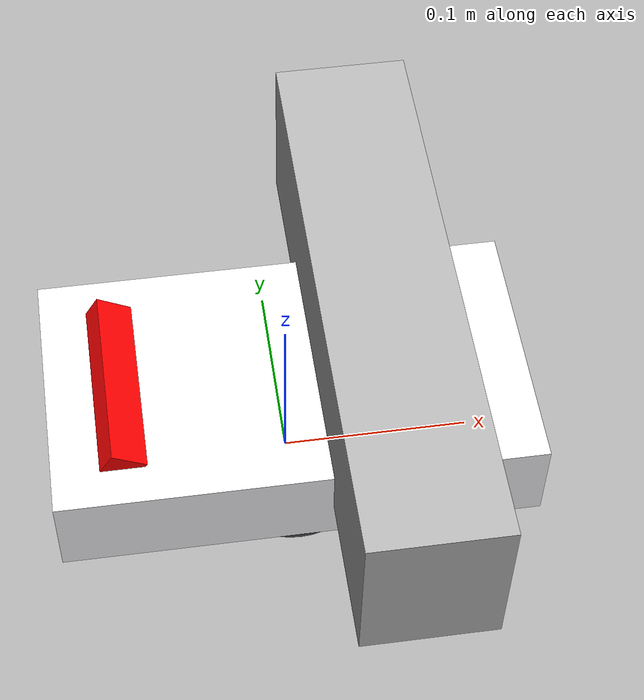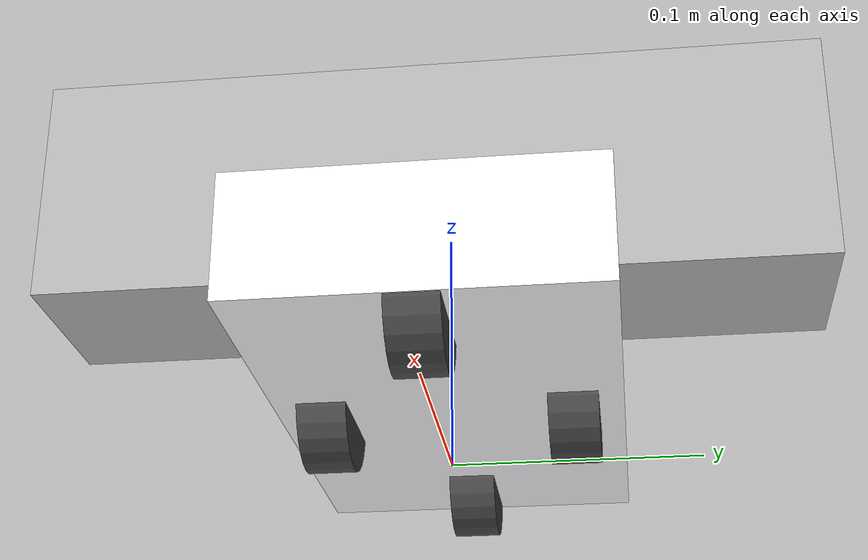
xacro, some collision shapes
<?xml version="1.0"?>
<robot name="hhbot" xmlns:xacro="http://www.ros.org/wiki/xacro">

    <xacro:include filename="$(find hhbot_gazebo)/urdf/hhbot_diff_body.urdf.xacro" />
    <xacro:include filename="$(find hhbot_gazebo)/urdf/kinect.xacro" />

    <xacro:property name="kinect_offset_x" value="0.05" />
    <xacro:property name="kinect_offset_y" value="0" />

    <!-- Body of hhobot -->
    <hhbot_body/>

    <!-- Kinect -->
    <joint name="kinect_frame_joint" type="fixed">
        <origin xyz="${kinect_offset_x} ${kinect_offset_y} ${base_link_height/2+0.02}"
                rpy="0 0 0" />
        <parent link="base_link"/>
        <child link="camera_link"/>
    </joint>
    <xacro:kinect_camera prefix="camera"/>

</robot>

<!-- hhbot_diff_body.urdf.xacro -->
<robot name="hhbot_body" xmlns:xacro="http://www.ros.org/wiki/xacro">

    <!-- Defining the colors -->
    <material name="Black">
        <color rgba="0.29 0.29 0.29 1"/>
    </material>

    <material name="White">
        <color rgba="0.96 0.96 0.98 1"/>
    </material>

    <material name="Red">
        <color rgba="1 0 0 1"/>
    </material>

    <!-- PROPERTY LIST -->
    <!-- All units in m-kg-s-radians unit system -->
    <xacro:property name="H_PI" value="3.1415926535897931" />

    <!-- Main body length, width, height and mass -->
    <xacro:property name="base_mass"        value="1" />
    <xacro:property name="base_link_length" value="0.25" />
    <xacro:property name="base_link_width"  value="0.14" />
    <xacro:property name="base_link_height" value="0.05"/>

    <!-- Wheel radius, height, centre and mass -->
    <xacro:property name="wheel_mass"   value="0.1" />
    <xacro:property name="wheel_radius" value="0.025" />
    <xacro:property name="wheel_length" value="0.02" />
    <xacro:property name="wheel_centre" value="0.005" />

    <!-- tail length, width, height, y and radian -->
    <xacro:property name="tail_width"  value="0.02" />
    <xacro:property name="tail_length" value="0.1" />
    <xacro:property name="tail_height" value="0.02" />
    <xacro:property name="tail_x"      value="-0.09" />
    <xacro:property name="tail_radian" value="-1.0472" />

    <!-- Macro for inertia matrix -->
    <xacro:macro name="sphere_inertial_matrix" params="m r">
        <inertial>
            <mass value="${m}" />
            <inertia ixx="${2*m*r*r/5}" ixy="0" ixz="0"
                     iyy="${2*m*r*r/5}" iyz="0"
                     izz="${2*m*r*r/5}" />
        </inertial>
    </xacro:macro>

    <xacro:macro name="cylinder_inertial_matrix" params="m r h">
        <inertial>
            <mass value="${m}" />
            <inertia ixx="${m*(3*r*r+h*h)/12}" ixy = "0" ixz = "0"
                     iyy="${m*(3*r*r+h*h)/12}" iyz = "0"
                     izz="${m*r*r/2}" />
        </inertial>
    </xacro:macro>

    <xacro:macro name="box_inertial_matrix" params="m w h d">
        <inertial>
            <mass value="${m}" />
            <inertia ixx="${m*(h*h+d*d)/12}" ixy = "0" ixz = "0"
                     iyy="${m*(w*w+d*d)/12}" iyz = "0"
                     izz="${m*(w*w+h*h)/12}" />
        </inertial>
    </xacro:macro>

    <!-- Macro for wheel -->
    <xacro:macro name="wheel" params="fblr">
        <!-- fblr: left, right, front, back -->
        <link name="${fblr}_wheel_link">
            <visual>
                <origin xyz="0 0 0" rpy="0 0 0" />
                <geometry>
                    <cylinder length="${wheel_length}" radius="${wheel_radius}" />
                </geometry>
                <material name="Black" />
            </visual>
            <collision>
                <origin xyz="0 0 0" rpy="0 0 0" />
                <geometry>
                    <cylinder length="${wheel_length}" radius="${wheel_radius}" />
                </geometry>
            </collision>
            <cylinder_inertial_matrix m="${wheel_mass}"
                                      r="${wheel_radius}"
                                      h="${wheel_length}" />
        </link>

        <gazebo reference="${fblr}_wheel_link">
            <material>Gazebo/Black</material>
        </gazebo>

        <xacro:property name="sign_tp" value="continuous" />
        <xacro:property name="sign_fb" value="0" />
        <xacro:if value="${fblr == 'front'}">
	        <xacro:property name="sign_fb" value="1.0" />
                <xacro:property name="sign_tp" value="fixed" />
        </xacro:if>
        <xacro:if value="${fblr == 'back'}">
	        <xacro:property name="sign_fb" value="-1.0" />
                <xacro:property name="sign_tp" value="fixed" />
        </xacro:if>

        <xacro:property name="sign_lr" value="0" />
        <xacro:if value="${fblr == 'left'}">
	        <xacro:property name="sign_lr" value="1.0" />
        </xacro:if>
        <xacro:if value="${fblr == 'right'}">
	        <xacro:property name="sign_lr" value="-1.0" />
        </xacro:if>

        <joint name="${fblr}_wheel_joint" type="${sign_tp}">
            <axis xyz="0 0 1" rpy="0 0 0" />
            <parent link="base_link" />
            <child link="${fblr}_wheel_link" />
            <origin xyz="${sign_fb*(base_link_length/2-wheel_radius)}
                         ${sign_lr*(base_link_width/2-wheel_length)}
                         ${-sign_lr*sign_lr*0.0001+wheel_centre-wheel_radius}"
                    rpy="${-H_PI/2} 0 0" />
        </joint>
    </xacro:macro>

    <!-- Macro for tail -->
    <xacro:macro name="tail">
        <link name="tail_link">
            <visual>
                <geometry>
                    <box size="${tail_width} ${tail_length} ${tail_height}"/>
                </geometry>
                <material name="Red"/>
            </visual>
        </link>

        <joint name="tail_joint" type="fixed">
            <parent link="base_link"/>
            <child link="tail_link"/>
            <origin rpy="0 ${tail_radian} 0" xyz="${tail_x} 0 ${base_link_height/2-0.002}"/>
        </joint>
        <gazebo reference="tail_link">
            <material>Gazebo/Red</material>
        </gazebo>
    </xacro:macro>

    <!-- BASE-FOOTPRINT -->
    <!-- base_footprint is a fictitious link(frame) that is on the ground right below base_link origin -->
    <xacro:macro name="hhbot_body">
        <link name="base_footprint">
            <visual>
                <origin xyz="0 0 0" rpy="0 0 0" />
                <geometry>
                    <box size="0.001 0.001 0.001" />
                </geometry>
            </visual>
        </link>

        <joint name="base_footprint_joint" type="fixed">
            <origin xyz="0 0 ${base_link_height/2+wheel_radius-wheel_centre}"
                    rpy="0 0 0" />
            <parent link="base_footprint"/>
            <child link="base_link" />
        </joint>

        <!-- BASE-LINK -->
        <!--Actual body/chassis of the robot-->
        <link name="base_link">
            <visual>
                <origin xyz=" 0 0 0" rpy="0 0 0" />
                <geometry>
                    <box size="${base_link_length} ${base_link_width} ${base_link_height}" />
                </geometry>
                <material name="White" />
            </visual>

            <collision>
                <origin xyz="0 0 0" rpy="0 0 0" />
                <geometry>
                    <box size="${base_link_length} ${base_link_width} ${base_link_height}" />
                </geometry>
            </collision>

            <box_inertial_matrix  m="${base_mass}"
                                  w="${base_link_width}"
                                  h="${base_link_height}"
                                  d="${base_link_length}" />
        </link>
        <gazebo reference="base_link">
            <material>Gazebo/White</material>
        </gazebo>

        <!-- Wheel Definitions -->
        <wheel fblr="front" />
        <wheel fblr="back" />
        <wheel fblr="left" />
        <wheel fblr="right" />

        <!-- Tail Definitions -->
        <tail/>

        <!-- controller -->
        <gazebo>
            <plugin name="differential_drive_controller" filename="libgazebo_ros_diff_drive.so">
                <rosDebugLevel>Debug</rosDebugLevel>
                <publishWheelTF>true</publishWheelTF>
                <robotNamespace>/</robotNamespace>
                <publishTf>1</publishTf>
                <publishWheelJointState>true</publishWheelJointState>
                <alwaysOn>true</alwaysOn>
                <updateRate>100.0</updateRate>
                <legacyMode>true</legacyMode>
                <leftJoint>left_wheel_joint</leftJoint>
                <rightJoint>right_wheel_joint</rightJoint>
                <wheelSeparation>${base_link_width}</wheelSeparation>
                <wheelDiameter>${2*wheel_radius}</wheelDiameter>
                <broadcastTF>1</broadcastTF>
                <wheelTorque>30</wheelTorque>
                <wheelAcceleration>1.8</wheelAcceleration>
                <commandTopic>cmd_vel</commandTopic>
                <odometryFrame>odom</odometryFrame>
                <odometryTopic>odom</odometryTopic>
                <robotBaseFrame>base_footprint</robotBaseFrame>
            </plugin>
        </gazebo>
    </xacro:macro>

</robot>

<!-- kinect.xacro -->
<robot xmlns:xacro="http://www.ros.org/wiki/xacro" name="kinect_camera">

    <xacro:macro name="kinect_camera" params="prefix:=camera">
        <!-- Create kinect reference frame -->
        <!-- Add mesh for kinect -->
        <link name="${prefix}_link">
            <origin xyz="0 0 0" rpy="0 0 0"/>
            <visual>
                <origin xyz="0 0 0" rpy="0 0 ${H_PI/2}"/>
                <geometry>
                    <mesh filename="package://hhbot_description/meshes/kinect.dae" />
                </geometry>
            </visual>
            <collision>
                <geometry>
                    <box size="0.07 0.3 0.09"/>
                </geometry>
            </collision>
        </link>

        <joint name="${prefix}_optical_joint" type="fixed">
            <origin xyz="0 0 0" rpy="-1.5708 0 -1.5708"/>
            <parent link="${prefix}_link"/>
            <child link="${prefix}_frame_optical"/>
        </joint>

        <link name="${prefix}_frame_optical"/>

        <gazebo reference="${prefix}_link">
            <sensor type="depth" name="${prefix}">
                <always_on>true</always_on>
                <update_rate>20.0</update_rate>
                <camera>
                    <horizontal_fov>${60.0*H_PI/180.0}</horizontal_fov>
                    <image>
                        <format>R8G8B8</format>
                        <width>640</width>
                        <height>480</height>
                    </image>
                    <clip>
                        <near>0.05</near>
                        <far>8.0</far>
                    </clip>
                </camera>
                <plugin name="kinect_${prefix}_controller" filename="libgazebo_ros_openni_kinect.so">
                    <cameraName>${prefix}</cameraName>
                    <alwaysOn>true</alwaysOn>
                    <updateRate>10</updateRate>
                    <imageTopicName>rgb/image_raw</imageTopicName>
                    <depthImageTopicName>depth/image_raw</depthImageTopicName>
                    <pointCloudTopicName>depth/points</pointCloudTopicName>
                    <cameraInfoTopicName>rgb/camera_info</cameraInfoTopicName>
                    <depthImageCameraInfoTopicName>depth/camera_info</depthImageCameraInfoTopicName>
                    <frameName>${prefix}_frame_optical</frameName>
                    <baseline>0.1</baseline>
                    <distortion_k1>0.0</distortion_k1>
                    <distortion_k2>0.0</distortion_k2>
                    <distortion_k3>0.0</distortion_k3>
                    <distortion_t1>0.0</distortion_t1>
                    <distortion_t2>0.0</distortion_t2>
                    <pointCloudCutoff>0.4</pointCloudCutoff>
                </plugin>
            </sensor>
        </gazebo>

    </xacro:macro>
</robot>
